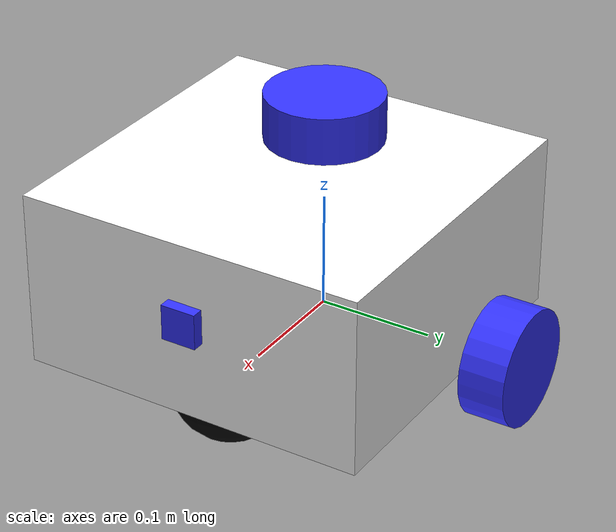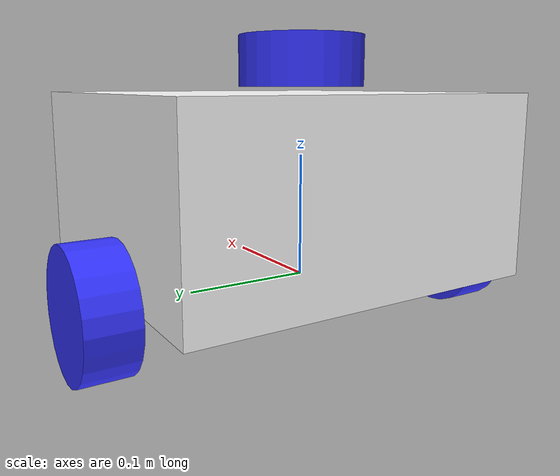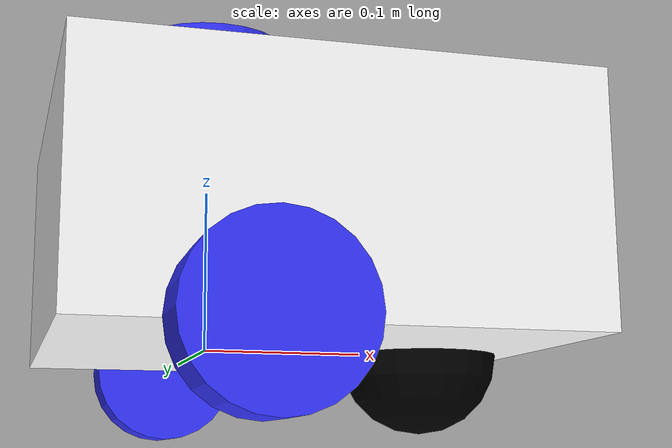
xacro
<?xml version="1.0"?>
<robot xmlns:xacro="http://www.ros.org/wiki/xacro" name="robot">

    <xacro:include filename="robot_core.xacro" />

    <xacro:arg name="use_ros2_control" default="true"/>
    <xacro:arg name="sim_mode" default="false"/>

    <xacro:if value="$(arg use_ros2_control)">
        <xacro:include filename="ros2_control.xacro" />
    </xacro:if>
    <xacro:unless value="$(arg use_ros2_control)">
        <xacro:include filename="gazebo_control.xacro" />
    </xacro:unless>

    <xacro:include filename="lidar.xacro"/>
    <xacro:include filename="camera.xacro"/>

</robot>

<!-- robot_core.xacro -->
<robot xmlns:xacro="http://www.ros.org/wiki/xacro">

    <xacro:include filename="inertial_macros.xacro"/>

    <material name="white">
        <color rgba="1 1 1 1"/>
    </material>

    <material name="orange">
        <color rgba="1 0.3 0.1 1"/>
    </material>

    <material name="blue">
        <color rgba="0.2 0.2 1 1"/>
    </material>

    <material name="black">
        <color rgba="0 0 0 1"/>
    </material>

    <material name="red">
        <color rgba="01 0 0 1"/>
    </material>

    <!-- BASE LINK -->
    <link name="base_link">

    </link>

    <!-- CHASSIS LINK -->
    <joint name="chassis_joint" type="fixed">
        <parent link="base_link"/>
        <child link="chassis"/>
        <origin xyz="-0.1 0 0"/>
    </joint>

    <link name="chassis">
        <visual>
            <origin xyz="0.15 0 0.075"/>
            <geometry>
                <box size="0.3 0.3 0.15"/>
            </geometry>
            <material name="white"/>
        </visual>
        <collision>
            <origin xyz="0.15 0 0.075"/>
            <geometry>
                <box size="0.3 0.3 0.15"/>
            </geometry>
        </collision>
        <xacro:inertial_box mass="0.5" x="0.3" y="0.3" z="0.15">
            <origin xyz="0.15 0 0.075" rpy="0 0 0"/>
        </xacro:inertial_box>
    </link>

    <gazebo reference="chassis">
        <material>Gazebo/Write</material>
    </gazebo>

    <!-- LEFT WHEEL LINK -->
    <joint name="left_wheel_joint" type="continuous">
        <parent link="base_link"/>
        <child link="left_wheel"/>
        <origin xyz="0 0.175 0" rpy="-${pi/2} 0 0"/>
        <axis xyz="0 0 1"/>
    </joint>

    <link name="left_wheel">
        <visual>
            <geometry>
                <cylinder radius="0.05" length="0.04"/>
            </geometry>
            <material name="blue"/>
        </visual>
        <collision>
            <geometry>
                <sphere radius="0.05"/>
            </geometry>
        </collision>
        <xacro:inertial_cylinder mass="0.1" radius="0.05" length="0.04">
            <origin xyz="0 0 0" rpy="0 0 0"/>
        </xacro:inertial_cylinder>
    </link>

    <gazebo reference="left_wheel">
        <material>Gazebo/Blue</material>
    </gazebo>

    <!-- RIGHT WHEEL LINK -->
    <joint name="right_wheel_joint" type="continuous">
        <parent link="base_link" />
        <child link="right_wheel" />
        <origin xyz="0 -0.175 0" rpy="${pi/2} 0 0" />
        <axis xyz="0 0 -1" />
    </joint>

    <link name="right_wheel">
        <visual>
            <geometry>
                <cylinder radius="0.05" length="0.04" />
            </geometry>
            <material name="blue" />
        </visual>
        <collision>
            <geometry>
                <sphere radius="0.05"/>
            </geometry>
        </collision>
        <xacro:inertial_cylinder mass="0.1" radius="0.05" length="0.04">
            <origin xyz="0 0 0" rpy="0 0 0"/>
        </xacro:inertial_cylinder>
    </link>

    <gazebo reference="right_wheel">
        <material>Gazebo/Blue</material>
    </gazebo>

    <!-- CASTER WHEEL LINK -->
    <joint name="caster_wheel_joint" type="fixed">
        <parent link="chassis" />
        <child link="caster_wheel" />
        <origin xyz="0.24 0 0" />
    </joint>

    <link name="caster_wheel">
        <visual>
            <geometry>
                <sphere radius="0.05" />
            </geometry>
            <material name="black" />
        </visual>
        <collision>
            <geometry>
                <sphere radius="0.05" />
            </geometry>
        </collision>
        <xacro:inertial_sphere mass="0.1" radius="0.05">
            <origin xyz="0 0 0" rpy="0 0 0"/>
        </xacro:inertial_sphere>
    </link>

    <gazebo reference="caster_wheel">
        <material>Gazebo/Black</material>
        <mu1 value="0.01"/>
        <mu2 value="0.01"/>
    </gazebo>
</robot>

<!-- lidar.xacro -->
<robot xmlns:xacro="http://www.ros.org/wiki/xacro">

    <joint name="laser_joint" type="fixed">
        <parent link="chassis"/>
        <child link="laser_frame"/>
        <origin xyz="0.1 0 0.175" rpy="0 0 0"/>
    </joint>

    <link name="laser_frame">
        <visual>
            <geometry>
                <cylinder radius="0.05" length="0.04"/>
            </geometry>
            <material name="blue"/>
        </visual>
        <collision>
            <geometry>
                <cylinder radius="0.05" length="0.04"/>
            </geometry>
        </collision>
        <xacro:inertial_cylinder mass="0.1" radius="0.05" length="0.04">
            <origin xyz="0 0 0" rpy="0 0 0"/>
        </xacro:inertial_cylinder>
    </link>

    <gazebo reference="laser_frame">
        <material>Gazebo/Red</material>
        <sensor name="laser" type="ray">
            <pose>0 0 0 0 0 0</pose>
            <visualize>false</visualize>
            <update_rate>10</update_rate>
            <ray>
                <scan>
                    <horizontal>
                        <samples>360</samples>
                        <resolution>1</resolution>
                        <min_angle>-3.14</min_angle>
                        <max_angle>3.14</max_angle>
                    </horizontal>
                </scan>
                <range>
                    <min>0.1</min>
                    <max>12</max>
                    <resolution>0.01</resolution>
                </range>
            </ray>
            <plugin name="laser_controller" filename="libgazebo_ros_ray_sensor.so">
                <ros>
                    <argument>~/out:=scan</argument>
                </ros>
                <output_type>sensor_msgs/LaserScan</output_type>
                <frame_name>laser_frame</frame_name>
            </plugin>
        </sensor>
    </gazebo>

</robot>

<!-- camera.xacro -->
<robot xmlns:xacro="http://www.ros.org/wiki/xacro">

    <joint name="camera_joint" type="fixed">
        <parent link="chassis"/>
        <child link="camera_link"/>
        <origin xyz="0.305 0 0.085" rpy="0 0 0"/>
    </joint>

    <link name="camera_link">
        <visual>
            <geometry>
                <box size="0.010 0.03 0.03"/>
            </geometry>
            <material name="blue"/>
        </visual>
    </link>

    <joint name="camera_optical_joint" type="fixed">
        <parent link="camera_link"/>
        <child link="camera_optical_link"/>
        <origin xyz="0 0 0" rpy="-${pi/2} 0 -${pi/2}"/>
    </joint>

    <link name="camera_optical_link"/>

    <gazebo reference="camera_link">
        <material>Gazebo/Red</material>
        <sensor name="camera" type="camera">
            <pose>0 0 0 0 0 0</pose>
            <visualize>true</visualize>
            <update_rate>10</update_rate>
            <camera>
                <horizontal_fov>1.089</horizontal_fov>
                <image>
                    <format>R8G8B8</format>
                    <witdh>640</witdh>
                    <hight>480</hight>
                </image>
                <clip>
                    <near>0.05</near>
                    <far>8.0</far>
                </clip>
            </camera>
            <plugin name="camera_controller" filename="libgazebo_ros_camera.so">
                <frame_name>camera_optical_link</frame_name>
            </plugin>
        </sensor>
    </gazebo>

</robot>
